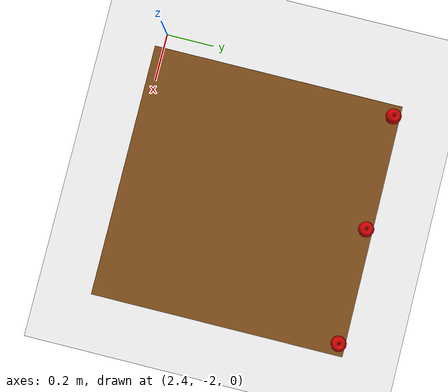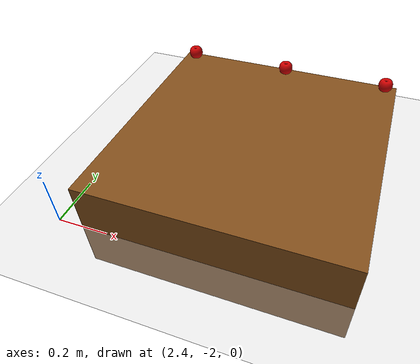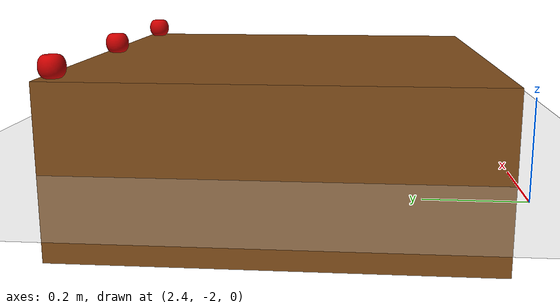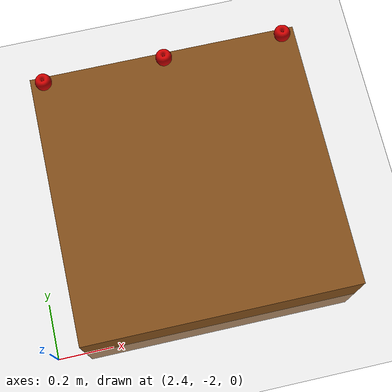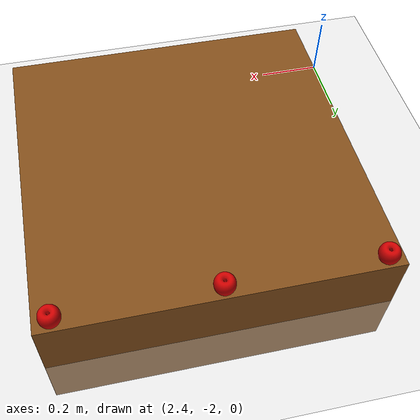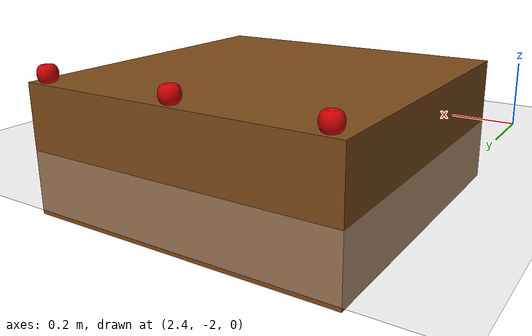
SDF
<sdf version="1.7">
 <world name="default">
  <light name="sun" type="directional">
   <pose>0 0 10 0 -0 0</pose>
   <diffuse>0.8 0.8 0.8 1</diffuse>
   <specular>0.2 0.2 0.2 1</specular>
   <attenuation>
    <range>1000</range>
    <constant>0.9</constant>
    <linear>0.01</linear>
    <quadratic>0.001</quadratic>
   </attenuation>
   <direction>-0.5 0.1 -0.9</direction>
   <spot><inner_angle>0</inner_angle><outer_angle>0</outer_angle><falloff>0</falloff></spot>
  </light>
  <model name="ground_plane">
   <static>1</static>
   <link name="link">
    <collision name="collision">
     <geometry><plane><normal>0 0 1</normal><size>100 100</size></plane></geometry>
     <surface><friction><ode><mu>100</mu><mu2>50</mu2></ode></friction></surface>
    </collision>
    <visual name="visual">
     <cast_shadows>0</cast_shadows>
     <geometry><plane><normal>0 0 1</normal><size>100 100</size></plane></geometry>
     <material>
      <script><uri>file://media/materials/scripts/gazebo.material</uri><name>Gazebo/Grey</name></script>
     </material>
    </visual>
   </link>
  </model>
  <gravity>0 0 -9.8</gravity>
  <magnetic_field>6e-06 2.3e-05 -4.2e-05</magnetic_field>
  <atmosphere type="adiabatic"/>
  <physics type="ode">
   <max_step_size>0.001</max_step_size>
   <real_time_factor>1</real_time_factor>
   <real_time_update_rate>1000</real_time_update_rate>
  </physics>
  <scene><ambient>0.4 0.4 0.4 1</ambient><background>0.7 0.7 0.7 1</background><shadows>1</shadows></scene>
  <spherical_coordinates>
   <surface_model>EARTH_WGS84</surface_model>
   <latitude_deg>0</latitude_deg>
   <longitude_deg>0</longitude_deg>
   <elevation>0</elevation>
   <heading_deg>0</heading_deg>
  </spherical_coordinates>
  <model name="box_flat">
   <static>1</static>
   <link name="link">
    <inertial>
     <mass>1</mass>
     <inertia>
      <ixx>0.166667</ixx>
      <ixy>0</ixy>
      <ixz>0</ixz>
      <iyy>0.166667</iyy>
      <iyz>0</iyz>
      <izz>0.166667</izz>
     </inertia>
    </inertial>
    <visual name="visual">
     <geometry><box><size>1 1 0.4</size></box></geometry>
     <material>
      <ambient>0.5 0.3 0.1 1</ambient>
      <diffuse>0.5 0.3 0.1 1</diffuse>
      <specular>0.1 0.1 0.1 1</specular>
     </material>
    </visual>
    <collision name="collision">
     <geometry><box><size>1 1 0.4</size></box></geometry>
     <surface>
      <friction>
       <ode><mu>1</mu><mu2>1</mu2><fdir1>0 0 0</fdir1><slip1>0</slip1><slip2>0</slip2></ode>
       <torsional>
        <coefficient>1</coefficient>
        <patch_radius>0</patch_radius>
        <surface_radius>0</surface_radius>
        <use_patch_radius>1</use_patch_radius>
        <ode><slip>0</slip></ode>
       </torsional>
      </friction>
      <bounce><restitution_coefficient>0</restitution_coefficient><threshold>1e+06</threshold></bounce>
      <contact>
       <collide_without_contact>0</collide_without_contact>
       <collide_without_contact_bitmask>1</collide_without_contact_bitmask>
       <collide_bitmask>1</collide_bitmask>
       <ode>
        <soft_cfm>0</soft_cfm>
        <soft_erp>0.2</soft_erp>
        <kp>1e+13</kp>
        <kd>1</kd>
        <max_vel>0.01</max_vel>
        <min_depth>0</min_depth>
       </ode>
       <bullet>
        <split_impulse>1</split_impulse>
        <split_impulse_penetration_threshold>-0.01</split_impulse_penetration_threshold>
        <soft_cfm>0</soft_cfm>
        <soft_erp>0.2</soft_erp>
        <kp>1e+13</kp>
        <kd>1</kd>
       </bullet>
      </contact>
     </surface>
    </collision>
   </link>
   <static>0</static>
   <pose>3 -1.5 0 0 -0 0</pose>
  </model>
  <model name="apple_body_0">
   <link name="base_link">
    <inertial>
     <mass>0.01</mass>
     <inertia>
      <ixx>3.7428e-05</ixx>
      <ixy>-2.7676e-37</ixy>
      <ixz>3.5154e-26</ixz>
      <iyy>3.7428e-05</iyy>
      <iyz>2.8705e-10</iyz>
      <izz>4.1939e-05</izz>
     </inertia>
    </inertial>
    <collision name="base_link_collision">
     <geometry><mesh><scale>1 1 1</scale><uri>model://apple_body/meshes/base_link.STL</uri></mesh></geometry>
    </collision>
    <visual name="base_link_visual">
     <geometry><mesh><scale>1 1 1</scale><uri>model://apple_body/meshes/base_link.STL</uri></mesh></geometry>
     <material>
      <ambient>0.2 0 0 1</ambient>
      <diffuse>0.8 0 0 1</diffuse>
      <specular>0.3 0.3 0.3 0</specular>
      <emissive>0.1 0 0 1</emissive>
     </material>
    </visual>
   </link>
   <pose>2.55 -1.03 0.225 0 -0 0</pose>
  </model>
  <model name="apple_body_1">
   <link name="base_link">
    <inertial>
     <mass>0.01</mass>
     <inertia>
      <ixx>3.7428e-05</ixx>
      <ixy>-2.7676e-37</ixy>
      <ixz>3.5154e-26</ixz>
      <iyy>3.7428e-05</iyy>
      <iyz>2.8705e-10</iyz>
      <izz>4.1939e-05</izz>
     </inertia>
    </inertial>
    <collision name="base_link_collision">
     <geometry><mesh><scale>1 1 1</scale><uri>model://apple_body/meshes/base_link.STL</uri></mesh></geometry>
    </collision>
    <visual name="base_link_visual">
     <geometry><mesh><scale>1 1 1</scale><uri>model://apple_body/meshes/base_link.STL</uri></mesh></geometry>
     <material>
      <ambient>0.2 0 0 1</ambient>
      <diffuse>0.8 0 0 1</diffuse>
      <specular>0.3 0.3 0.3 0</specular>
      <emissive>0.1 0 0 1</emissive>
     </material>
    </visual>
   </link>
   <pose>3 -1.03 0.225 0 -0 0</pose>
  </model>
  <model name="apple_body">
   <link name="base_link">
    <inertial>
     <mass>0.01</mass>
     <inertia>
      <ixx>3.7428e-05</ixx>
      <ixy>-2.7676e-37</ixy>
      <ixz>3.5154e-26</ixz>
      <iyy>3.7428e-05</iyy>
      <iyz>2.8705e-10</iyz>
      <izz>4.1939e-05</izz>
     </inertia>
    </inertial>
    <collision name="base_link_collision">
     <geometry><mesh><scale>1 1 1</scale><uri>model://apple_body/meshes/base_link.STL</uri></mesh></geometry>
    </collision>
    <visual name="base_link_visual">
     <geometry><mesh><scale>1 1 1</scale><uri>model://apple_body/meshes/base_link.STL</uri></mesh></geometry>
     <material>
      <ambient>0.2 0 0 1</ambient>
      <diffuse>0.8 0 0 1</diffuse>
      <specular>0.3 0.3 0.3 0</specular>
      <emissive>0.1 0 0 1</emissive>
     </material>
    </visual>
   </link>
   <pose>3.45 -1.03 0.225 0 -0 0</pose>
  </model>
 </world>
</sdf>
